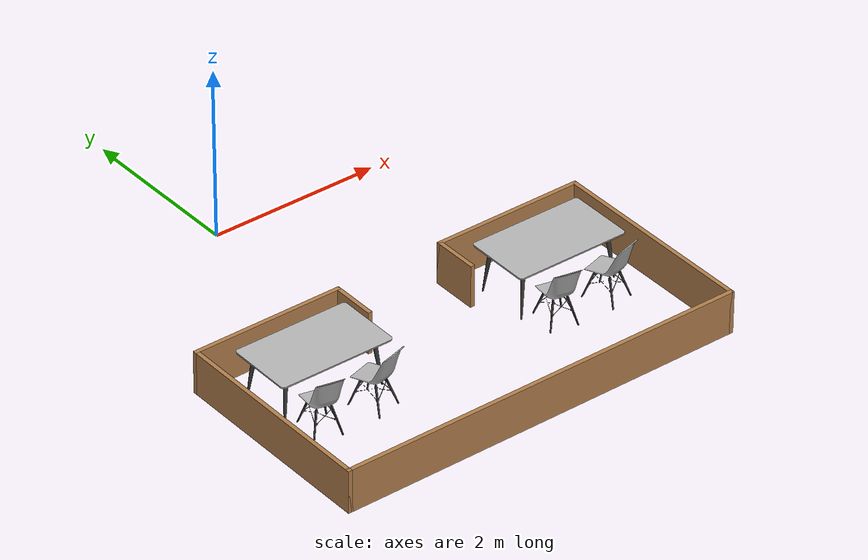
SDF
<?xml version='1.0'?>
<sdf version='1.6'>
  <model name='makeshift_hospital_office'>
    <link name='Wall_15'>
      <pose frame=''>-0.025 -2.325 0 0 -0 1.5708</pose>
      <self_collide>0</self_collide>
      <enable_wind>0</enable_wind>
      <kinematic>0</kinematic>
      <visual name='Wall_15_Visual'>
        <pose frame=''>0 0 0.25 0 -0 0</pose>
        <geometry>
          <box>
            <size>0.55 0.05 0.5</size>
          </box>
        </geometry>
        <material>
          <script>
            <uri>file://media/materials/scripts/gazebo.material</uri>
            <name>Gazebo/Wood</name>
          </script>
          <ambient>1 1 1 1</ambient>
        </material>
        <meta>
          <layer>0</layer>
        </meta>
        <transparency>0</transparency>
        <cast_shadows>1</cast_shadows>
      </visual>
      <collision name='Wall_15_Collision'>
        <laser_retro>0</laser_retro>
        <max_contacts>10</max_contacts>
        <pose frame=''>0 0 0.25 0 -0 0</pose>
        <geometry>
          <box>
            <size>0.55 0.05 0.5</size>
          </box>
        </geometry>
        <surface>
          <friction>
            <ode>
              <mu>1</mu>
              <mu2>1</mu2>
              <fdir1>0 0 0</fdir1>
              <slip1>0</slip1>
              <slip2>0</slip2>
            </ode>
            <torsional>
              <coefficient>1</coefficient>
              <patch_radius>0</patch_radius>
              <surface_radius>0</surface_radius>
              <use_patch_radius>1</use_patch_radius>
              <ode>
                <slip>0</slip>
              </ode>
            </torsional>
          </friction>
          <bounce>
            <restitution_coefficient>0</restitution_coefficient>
            <threshold>1e+06</threshold>
          </bounce>
          <contact>
            <collide_without_contact>0</collide_without_contact>
            <collide_without_contact_bitmask>1</collide_without_contact_bitmask>
            <collide_bitmask>1</collide_bitmask>
            <ode>
              <soft_cfm>0</soft_cfm>
              <soft_erp>0.2</soft_erp>
              <kp>1e+13</kp>
              <kd>1</kd>
              <max_vel>0.01</max_vel>
              <min_depth>0</min_depth>
            </ode>
            <bullet>
              <split_impulse>1</split_impulse>
              <split_impulse_penetration_threshold>-0.01</split_impulse_penetration_threshold>
              <soft_cfm>0</soft_cfm>
              <soft_erp>0.2</soft_erp>
              <kp>1e+13</kp>
              <kd>1</kd>
            </bullet>
          </contact>
        </surface>
      </collision>
    </link>
    <link name='Wall_16'>
      <pose frame=''>-0.9 -2.075 0 0 -0 3.14159</pose>
      <self_collide>0</self_collide>
      <enable_wind>0</enable_wind>
      <kinematic>0</kinematic>
      <visual name='Wall_16_Visual'>
        <pose frame=''>0 0 0.25 0 -0 0</pose>
        <geometry>
          <box>
            <size>1.8 0.05 0.5</size>
          </box>
        </geometry>
        <material>
          <script>
            <uri>file://media/materials/scripts/gazebo.material</uri>
            <name>Gazebo/Wood</name>
          </script>
          <ambient>1 1 1 1</ambient>
        </material>
        <meta>
          <layer>0</layer>
        </meta>
        <transparency>0</transparency>
        <cast_shadows>1</cast_shadows>
      </visual>
      <collision name='Wall_16_Collision'>
        <laser_retro>0</laser_retro>
        <max_contacts>10</max_contacts>
        <pose frame=''>0 0 0.25 0 -0 0</pose>
        <geometry>
          <box>
            <size>1.8 0.05 0.51</size>
          </box>
        </geometry>
        <surface>
          <friction>
            <ode>
              <mu>1</mu>
              <mu2>1</mu2>
              <fdir1>0 0 0</fdir1>
              <slip1>0</slip1>
              <slip2>0</slip2>
            </ode>
            <torsional>
              <coefficient>1</coefficient>
              <patch_radius>0</patch_radius>
              <surface_radius>0</surface_radius>
              <use_patch_radius>1</use_patch_radius>
              <ode>
                <slip>0</slip>
              </ode>
            </torsional>
          </friction>
          <bounce>
            <restitution_coefficient>0</restitution_coefficient>
            <threshold>1e+06</threshold>
          </bounce>
          <contact>
            <collide_without_contact>0</collide_without_contact>
            <collide_without_contact_bitmask>1</collide_without_contact_bitmask>
            <collide_bitmask>1</collide_bitmask>
            <ode>
              <soft_cfm>0</soft_cfm>
              <soft_erp>0.2</soft_erp>
              <kp>1e+13</kp>
              <kd>1</kd>
              <max_vel>0.01</max_vel>
              <min_depth>0</min_depth>
            </ode>
            <bullet>
              <split_impulse>1</split_impulse>
              <split_impulse_penetration_threshold>-0.01</split_impulse_penetration_threshold>
              <soft_cfm>0</soft_cfm>
              <soft_erp>0.2</soft_erp>
              <kp>1e+13</kp>
              <kd>1</kd>
            </bullet>
          </contact>
        </surface>
      </collision>
    </link>
    <link name='Wall_17'>
      <pose frame=''>-1.775 -3.3 0 0 0 -1.5708</pose>
      <self_collide>0</self_collide>
      <enable_wind>0</enable_wind>
      <kinematic>0</kinematic>
      <visual name='Wall_17_Visual'>
        <pose frame=''>0 0 0.25 0 -0 0</pose>
        <geometry>
          <box>
            <size>2.5 0.05 0.5</size>
          </box>
        </geometry>
        <material>
          <script>
            <uri>file://media/materials/scripts/gazebo.material</uri>
            <name>Gazebo/Wood</name>
          </script>
          <ambient>1 1 1 1</ambient>
        </material>
        <meta>
          <layer>0</layer>
        </meta>
        <transparency>0</transparency>
        <cast_shadows>1</cast_shadows>
      </visual>
      <collision name='Wall_17_Collision'>
        <laser_retro>0</laser_retro>
        <max_contacts>10</max_contacts>
        <pose frame=''>0 0 0.25 0 -0 0</pose>
        <geometry>
          <box>
            <size>2.5 0.05 0.5</size>
          </box>
        </geometry>
        <surface>
          <friction>
            <ode>
              <mu>1</mu>
              <mu2>1</mu2>
              <fdir1>0 0 0</fdir1>
              <slip1>0</slip1>
              <slip2>0</slip2>
            </ode>
            <torsional>
              <coefficient>1</coefficient>
              <patch_radius>0</patch_radius>
              <surface_radius>0</surface_radius>
              <use_patch_radius>1</use_patch_radius>
              <ode>
                <slip>0</slip>
              </ode>
            </torsional>
          </friction>
          <bounce>
            <restitution_coefficient>0</restitution_coefficient>
            <threshold>1e+06</threshold>
          </bounce>
          <contact>
            <collide_without_contact>0</collide_without_contact>
            <collide_without_contact_bitmask>1</collide_without_contact_bitmask>
            <collide_bitmask>1</collide_bitmask>
            <ode>
              <soft_cfm>0</soft_cfm>
              <soft_erp>0.2</soft_erp>
              <kp>1e+13</kp>
              <kd>1</kd>
              <max_vel>0.01</max_vel>
              <min_depth>0</min_depth>
            </ode>
            <bullet>
              <split_impulse>1</split_impulse>
              <split_impulse_penetration_threshold>-0.01</split_impulse_penetration_threshold>
              <soft_cfm>0</soft_cfm>
              <soft_erp>0.2</soft_erp>
              <kp>1e+13</kp>
              <kd>1</kd>
            </bullet>
          </contact>
        </surface>
      </collision>
    </link>
    <link name='Wall_18'>
      <pose frame=''>0.625 -4.525 0 0 -0 0</pose>
      <self_collide>0</self_collide>
      <enable_wind>0</enable_wind>
      <kinematic>0</kinematic>
      <visual name='Wall_18_Visual'>
        <pose frame=''>0 0 0.25 0 -0 0</pose>
        <geometry>
          <box>
            <size>4.85 0.05 0.5</size>
          </box>
        </geometry>
        <material>
          <script>
            <uri>file://media/materials/scripts/gazebo.material</uri>
            <name>Gazebo/Wood</name>
          </script>
          <ambient>1 1 1 1</ambient>
        </material>
        <meta>
          <layer>0</layer>
        </meta>
        <transparency>0</transparency>
        <cast_shadows>1</cast_shadows>
      </visual>
      <collision name='Wall_18_Collision'>
        <laser_retro>0</laser_retro>
        <max_contacts>10</max_contacts>
        <pose frame=''>0 0 0.25 0 -0 0</pose>
        <geometry>
          <box>
            <size>4.85 0.05 0.5</size>
          </box>
        </geometry>
        <surface>
          <friction>
            <ode>
              <mu>1</mu>
              <mu2>1</mu2>
              <fdir1>0 0 0</fdir1>
              <slip1>0</slip1>
              <slip2>0</slip2>
            </ode>
            <torsional>
              <coefficient>1</coefficient>
              <patch_radius>0</patch_radius>
              <surface_radius>0</surface_radius>
              <use_patch_radius>1</use_patch_radius>
              <ode>
                <slip>0</slip>
              </ode>
            </torsional>
          </friction>
          <bounce>
            <restitution_coefficient>0</restitution_coefficient>
            <threshold>1e+06</threshold>
          </bounce>
          <contact>
            <collide_without_contact>0</collide_without_contact>
            <collide_without_contact_bitmask>1</collide_without_contact_bitmask>
            <collide_bitmask>1</collide_bitmask>
            <ode>
              <soft_cfm>0</soft_cfm>
              <soft_erp>0.2</soft_erp>
              <kp>1e+13</kp>
              <kd>1</kd>
              <max_vel>0.01</max_vel>
              <min_depth>0</min_depth>
            </ode>
            <bullet>
              <split_impulse>1</split_impulse>
              <split_impulse_penetration_threshold>-0.01</split_impulse_penetration_threshold>
              <soft_cfm>0</soft_cfm>
              <soft_erp>0.2</soft_erp>
              <kp>1e+13</kp>
              <kd>1</kd>
            </bullet>
          </contact>
        </surface>
      </collision>
    </link>
    <link name='Wall_19'>
      <pose frame=''>3.025 -3.3 0 0 -0 1.5708</pose>
      <self_collide>0</self_collide>
      <enable_wind>0</enable_wind>
      <kinematic>0</kinematic>
      <visual name='Wall_19_Visual'>
        <pose frame=''>0 0 0.25 0 -0 0</pose>
        <geometry>
          <box>
            <size>2.5 0.05 0.5</size>
          </box>
        </geometry>
        <material>
          <script>
            <uri>file://media/materials/scripts/gazebo.material</uri>
            <name>Gazebo/Wood</name>
          </script>
          <ambient>1 1 1 1</ambient>
        </material>
        <meta>
          <layer>0</layer>
        </meta>
        <transparency>0</transparency>
        <cast_shadows>1</cast_shadows>
      </visual>
      <collision name='Wall_19_Collision'>
        <laser_retro>0</laser_retro>
        <max_contacts>10</max_contacts>
        <pose frame=''>0 0 0.25 0 -0 0</pose>
        <geometry>
          <box>
            <size>2.5 0.05 0.5</size>
          </box>
        </geometry>
        <surface>
          <friction>
            <ode>
              <mu>1</mu>
              <mu2>1</mu2>
              <fdir1>0 0 0</fdir1>
              <slip1>0</slip1>
              <slip2>0</slip2>
            </ode>
            <torsional>
              <coefficient>1</coefficient>
              <patch_radius>0</patch_radius>
              <surface_radius>0</surface_radius>
              <use_patch_radius>1</use_patch_radius>
              <ode>
                <slip>0</slip>
              </ode>
            </torsional>
          </friction>
          <bounce>
            <restitution_coefficient>0</restitution_coefficient>
            <threshold>1e+06</threshold>
          </bounce>
          <contact>
            <collide_without_contact>0</collide_without_contact>
            <collide_without_contact_bitmask>1</collide_without_contact_bitmask>
            <collide_bitmask>1</collide_bitmask>
            <ode>
              <soft_cfm>0</soft_cfm>
              <soft_erp>0.2</soft_erp>
              <kp>1e+13</kp>
              <kd>1</kd>
              <max_vel>0.01</max_vel>
              <min_depth>0</min_depth>
            </ode>
            <bullet>
              <split_impulse>1</split_impulse>
              <split_impulse_penetration_threshold>-0.01</split_impulse_penetration_threshold>
              <soft_cfm>0</soft_cfm>
              <soft_erp>0.2</soft_erp>
              <kp>1e+13</kp>
              <kd>1</kd>
            </bullet>
          </contact>
        </surface>
      </collision>
    </link>
    <link name='Wall_20'>
      <pose frame=''>2.15 -2.075 0 0 -0 3.14159</pose>
      <self_collide>0</self_collide>
      <enable_wind>0</enable_wind>
      <kinematic>0</kinematic>
      <visual name='Wall_20_Visual'>
        <pose frame=''>0 0 0.25 0 -0 0</pose>
        <geometry>
          <box>
            <size>1.8 0.05 0.5</size>
          </box>
        </geometry>
        <material>
          <script>
            <uri>file://media/materials/scripts/gazebo.material</uri>
            <name>Gazebo/Wood</name>
          </script>
          <ambient>1 1 1 1</ambient>
        </material>
        <meta>
          <layer>0</layer>
        </meta>
        <transparency>0</transparency>
        <cast_shadows>1</cast_shadows>
      </visual>
      <collision name='Wall_20_Collision'>
        <laser_retro>0</laser_retro>
        <max_contacts>10</max_contacts>
        <pose frame=''>0 0 0.25 0 -0 0</pose>
        <geometry>
          <box>
            <size>1.8 0.05 0.51</size>
          </box>
        </geometry>
        <surface>
          <friction>
            <ode>
              <mu>1</mu>
              <mu2>1</mu2>
              <fdir1>0 0 0</fdir1>
              <slip1>0</slip1>
              <slip2>0</slip2>
            </ode>
            <torsional>
              <coefficient>1</coefficient>
              <patch_radius>0</patch_radius>
              <surface_radius>0</surface_radius>
              <use_patch_radius>1</use_patch_radius>
              <ode>
                <slip>0</slip>
              </ode>
            </torsional>
          </friction>
          <bounce>
            <restitution_coefficient>0</restitution_coefficient>
            <threshold>1e+06</threshold>
          </bounce>
          <contact>
            <collide_without_contact>0</collide_without_contact>
            <collide_without_contact_bitmask>1</collide_without_contact_bitmask>
            <collide_bitmask>1</collide_bitmask>
            <ode>
              <soft_cfm>0</soft_cfm>
              <soft_erp>0.2</soft_erp>
              <kp>1e+13</kp>
              <kd>1</kd>
              <max_vel>0.01</max_vel>
              <min_depth>0</min_depth>
            </ode>
            <bullet>
              <split_impulse>1</split_impulse>
              <split_impulse_penetration_threshold>-0.01</split_impulse_penetration_threshold>
              <soft_cfm>0</soft_cfm>
              <soft_erp>0.2</soft_erp>
              <kp>1e+13</kp>
              <kd>1</kd>
            </bullet>
          </contact>
        </surface>
      </collision>
    </link>
    <link name='Wall_21'>
      <pose frame=''>1.275 -2.325 0 0 0 -1.5708</pose>
      <self_collide>0</self_collide>
      <enable_wind>0</enable_wind>
      <kinematic>0</kinematic>
      <visual name='Wall_21_Visual'>
        <pose frame=''>0 0 0.25 0 -0 0</pose>
        <geometry>
          <box>
            <size>0.55 0.05 0.5</size>
          </box>
        </geometry>
        <material>
          <script>
            <uri>file://media/materials/scripts/gazebo.material</uri>
            <name>Gazebo/Wood</name>
          </script>
          <ambient>1 1 1 1</ambient>
        </material>
        <meta>
          <layer>0</layer>
        </meta>
        <transparency>0</transparency>
        <cast_shadows>1</cast_shadows>
      </visual>
      <collision name='Wall_21_Collision'>
        <laser_retro>0</laser_retro>
        <max_contacts>10</max_contacts>
        <pose frame=''>0 0 0.25 0 -0 0</pose>
        <geometry>
          <box>
            <size>0.55 0.05 0.5</size>
          </box>
        </geometry>
        <surface>
          <friction>
            <ode>
              <mu>1</mu>
              <mu2>1</mu2>
              <fdir1>0 0 0</fdir1>
              <slip1>0</slip1>
              <slip2>0</slip2>
            </ode>
            <torsional>
              <coefficient>1</coefficient>
              <patch_radius>0</patch_radius>
              <surface_radius>0</surface_radius>
              <use_patch_radius>1</use_patch_radius>
              <ode>
                <slip>0</slip>
              </ode>
            </torsional>
          </friction>
          <bounce>
            <restitution_coefficient>0</restitution_coefficient>
            <threshold>1e+06</threshold>
          </bounce>
          <contact>
            <collide_without_contact>0</collide_without_contact>
            <collide_without_contact_bitmask>1</collide_without_contact_bitmask>
            <collide_bitmask>1</collide_bitmask>
            <ode>
              <soft_cfm>0</soft_cfm>
              <soft_erp>0.2</soft_erp>
              <kp>1e+13</kp>
              <kd>1</kd>
              <max_vel>0.01</max_vel>
              <min_depth>0</min_depth>
            </ode>
            <bullet>
              <split_impulse>1</split_impulse>
              <split_impulse_penetration_threshold>-0.01</split_impulse_penetration_threshold>
              <soft_cfm>0</soft_cfm>
              <soft_erp>0.2</soft_erp>
              <kp>1e+13</kp>
              <kd>1</kd>
            </bullet>
          </contact>
        </surface>
      </collision>
    </link>
    <model name='chairs_and_table'>
      <static>0</static>
      <link name='link'>
        <inertial>
          <mass>30</mass>
          <inertia>
            <ixx>1</ixx>
            <ixy>0</ixy>
            <ixz>0</ixz>
            <iyy>1</iyy>
            <iyz>0</iyz>
            <izz>1</izz>
          </inertia>
        </inertial>
        <collision name='collision'>
          <geometry>
            <mesh>
              <uri>model://chairs_and_table/chairs_and_table.dae</uri>
            </mesh>
          </geometry>
          <max_contacts>10</max_contacts>
          <surface>
            <contact>
              <ode/>
            </contact>
            <bounce/>
            <friction>
              <torsional>
                <ode/>
              </torsional>
              <ode/>
            </friction>
          </surface>
        </collision>
        <visual name='visual'>
          <geometry>
            <mesh>
              <uri>model://chairs_and_table/chairs_and_table.dae</uri>
            </mesh>
          </geometry>
        </visual>
        <self_collide>0</self_collide>
        <enable_wind>0</enable_wind>
        <kinematic>0</kinematic>
      </link>
      <pose frame=''>-0.859018 -2.78442 0 0 -0 0</pose>
    </model>
    <model name='chairs_and_table_0'>
      <static>0</static>
      <link name='link'>
        <inertial>
          <mass>30</mass>
          <inertia>
            <ixx>1</ixx>
            <ixy>0</ixy>
            <ixz>0</ixz>
            <iyy>1</iyy>
            <iyz>0</iyz>
            <izz>1</izz>
          </inertia>
        </inertial>
        <collision name='collision'>
          <geometry>
            <mesh>
              <uri>model://chairs_and_table/chairs_and_table.dae</uri>
            </mesh>
          </geometry>
          <max_contacts>10</max_contacts>
          <surface>
            <contact>
              <ode/>
            </contact>
            <bounce/>
            <friction>
              <torsional>
                <ode/>
              </torsional>
              <ode/>
            </friction>
          </surface>
        </collision>
        <visual name='visual'>
          <geometry>
            <mesh>
              <uri>model://chairs_and_table/chairs_and_table.dae</uri>
            </mesh>
          </geometry>
        </visual>
        <self_collide>0</self_collide>
        <enable_wind>0</enable_wind>
        <kinematic>0</kinematic>
      </link>
      <pose frame=''>2.11967 -2.77806 0 0 -0 0</pose>
    </model>
    <static>1</static>
    <allow_auto_disable>1</allow_auto_disable>
  </model>
</sdf>
